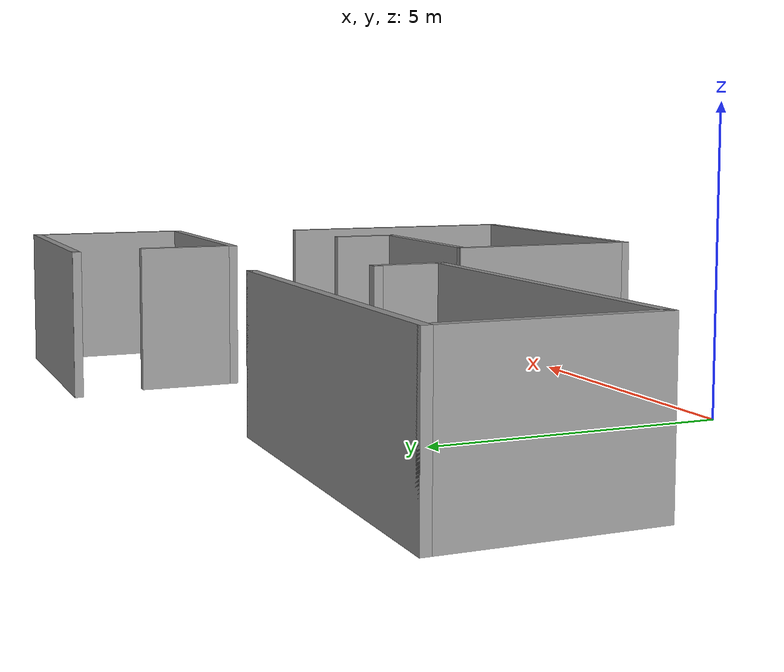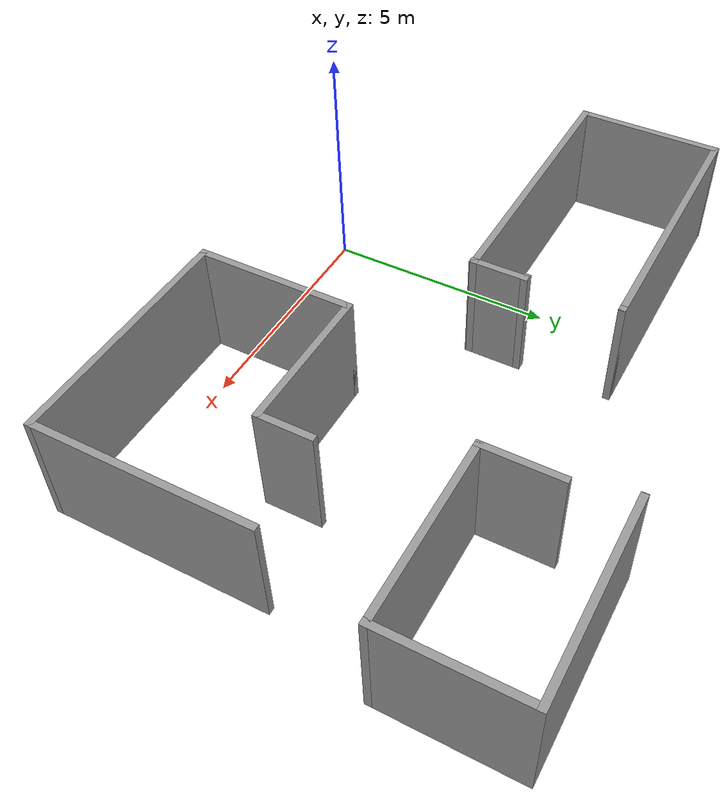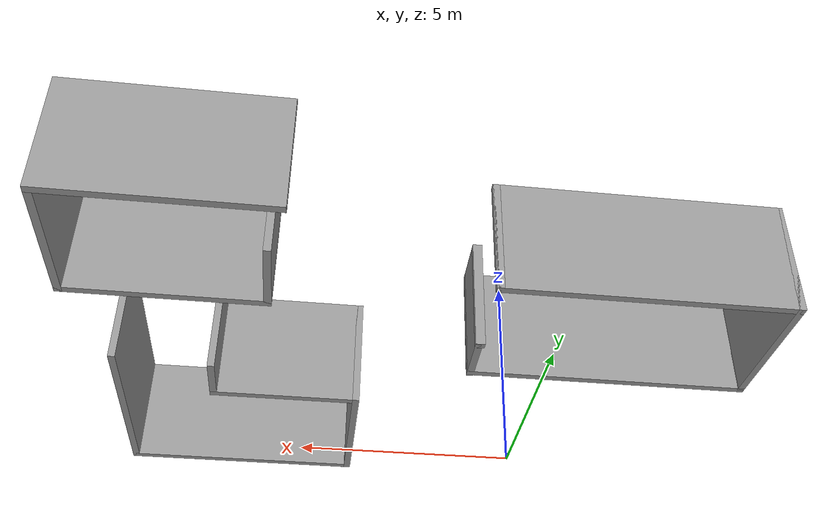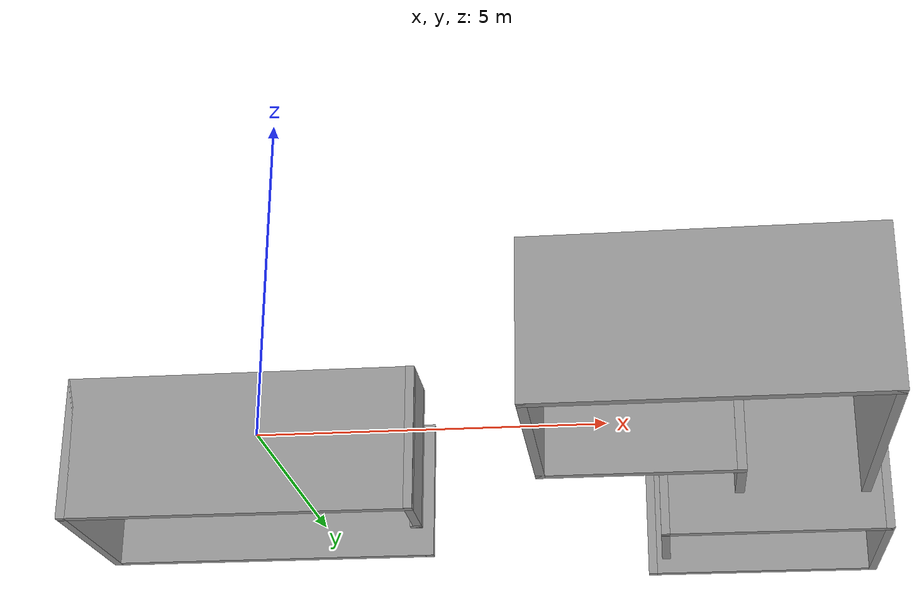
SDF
<?xml version='1.0'?>
<sdf version='1.7'>
  <model name='turtlebot3_autonomous'>
    <pose>2.63212 4.06023 0 0 -0 0</pose>
    <link name='Wall_11'>
      <collision name='Wall_11_Collision'>
        <geometry>
          <box>
            <size>6 0.15 2.5</size>
          </box>
        </geometry>
        <pose>0 0 1.25 0 -0 0</pose>
      </collision>
      <visual name='Wall_11_Visual'>
        <pose>0 0 1.25 0 -0 0</pose>
        <geometry>
          <box>
            <size>6 0.15 2.5</size>
          </box>
        </geometry>
        <material>
          <script>
            <uri>file://media/materials/scripts/gazebo.material</uri>
            <name>Gazebo/Grey</name>
          </script>
          <ambient>1 1 1 1</ambient>
        </material>
        <meta>
          <layer>0</layer>
        </meta>
      </visual>
      <pose>-4.06788 3.08475 0 0 -0 0</pose>
    </link>
    <link name='Wall_12'>
      <collision name='Wall_12_Collision'>
        <geometry>
          <box>
            <size>0.15 0.15 2.5</size>
          </box>
        </geometry>
        <pose>0 0 1.25 0 -0 0</pose>
      </collision>
      <visual name='Wall_12_Visual'>
        <pose>0 0 1.25 0 -0 0</pose>
        <geometry>
          <box>
            <size>0.15 0.15 2.5</size>
          </box>
        </geometry>
        <material>
          <script>
            <uri>file://media/materials/scripts/gazebo.material</uri>
            <name>Gazebo/Grey</name>
          </script>
          <ambient>1 1 1 1</ambient>
        </material>
        <meta>
          <layer>0</layer>
        </meta>
      </visual>
      <pose>-1.14288 3.08475 0 0 -0 0</pose>
    </link>
    <link name='Wall_14'>
      <collision name='Wall_14_Collision'>
        <geometry>
          <box>
            <size>0.16 0.15 2.5</size>
          </box>
        </geometry>
        <pose>0 0 1.25 0 -0 0</pose>
      </collision>
      <visual name='Wall_14_Visual'>
        <pose>0 0 1.25 0 -0 0</pose>
        <geometry>
          <box>
            <size>0.16 0.15 2.5</size>
          </box>
        </geometry>
        <material>
          <script>
            <uri>file://media/materials/scripts/gazebo.material</uri>
            <name>Gazebo/Grey</name>
          </script>
          <ambient>1 1 1 1</ambient>
        </material>
        <meta>
          <layer>0</layer>
        </meta>
      </visual>
      <pose>2.88788 4.93519 0 0 -0 0</pose>
    </link>
    <link name='Wall_15'>
      <collision name='Wall_15_Collision'>
        <geometry>
          <box>
            <size>4.25 0.15 2.5</size>
          </box>
        </geometry>
        <pose>0 0 1.25 0 -0 0</pose>
      </collision>
      <visual name='Wall_15_Visual'>
        <pose>0 0 1.25 0 -0 0</pose>
        <geometry>
          <box>
            <size>4.25 0.15 2.5</size>
          </box>
        </geometry>
        <material>
          <script>
            <uri>file://media/materials/scripts/gazebo.material</uri>
            <name>Gazebo/Grey</name>
          </script>
          <ambient>1 1 1 1</ambient>
        </material>
        <meta>
          <layer>0</layer>
        </meta>
      </visual>
      <pose>4.94288 4.9352 0 0 -0 0</pose>
    </link>
    <link name='Wall_16'>
      <collision name='Wall_16_Collision'>
        <geometry>
          <box>
            <size>3 0.15 2.5</size>
          </box>
        </geometry>
        <pose>0 0 1.25 0 -0 0</pose>
      </collision>
      <visual name='Wall_16_Visual'>
        <pose>0 0 1.25 0 -0 0</pose>
        <geometry>
          <box>
            <size>3 0.15 2.5</size>
          </box>
        </geometry>
        <material>
          <script>
            <uri>file://media/materials/scripts/gazebo.material</uri>
            <name>Gazebo/Grey</name>
          </script>
          <ambient>1 1 1 1</ambient>
        </material>
        <meta>
          <layer>0</layer>
        </meta>
      </visual>
      <pose>6.99288 3.51019 0 0 -0 -1.5708</pose>
    </link>
    <link name='Wall_17'>
      <collision name='Wall_17_Collision'>
        <geometry>
          <box>
            <size>4 0.15 2.5</size>
          </box>
        </geometry>
        <pose>0 0 1.25 0 -0 0</pose>
      </collision>
      <visual name='Wall_17_Visual'>
        <pose>0 0 1.25 0 -0 0</pose>
        <geometry>
          <box>
            <size>4 0.15 2.5</size>
          </box>
        </geometry>
        <material>
          <script>
            <uri>file://media/materials/scripts/gazebo.material</uri>
            <name>Gazebo/Grey</name>
          </script>
          <ambient>1 1 1 1</ambient>
        </material>
        <meta>
          <layer>0</layer>
        </meta>
      </visual>
      <pose>5.06788 2.0852 0 0 -0 3.14159</pose>
    </link>
    <link name='Wall_18'>
      <collision name='Wall_18_Collision'>
        <geometry>
          <box>
            <size>1.75 0.15 2.5</size>
          </box>
        </geometry>
        <pose>0 0 1.25 0 -0 0</pose>
      </collision>
      <visual name='Wall_18_Visual'>
        <pose>0 0 1.25 0 -0 0</pose>
        <geometry>
          <box>
            <size>1.75 0.15 2.5</size>
          </box>
        </geometry>
        <material>
          <script>
            <uri>file://media/materials/scripts/gazebo.material</uri>
            <name>Gazebo/Grey</name>
          </script>
          <ambient>1 1 1 1</ambient>
        </material>
        <meta>
          <layer>0</layer>
        </meta>
      </visual>
      <pose>3.14288 2.88519 0 0 -0 1.5708</pose>
    </link>
    <link name='Wall_20'>
      <collision name='Wall_20_Collision'>
        <geometry>
          <box>
            <size>4.75 0.15 2.5</size>
          </box>
        </geometry>
        <pose>0 0 1.25 0 -0 0</pose>
      </collision>
      <visual name='Wall_20_Visual'>
        <pose>0 0 1.25 0 -0 0</pose>
        <geometry>
          <box>
            <size>4.75 0.15 2.5</size>
          </box>
        </geometry>
        <material>
          <script>
            <uri>file://media/materials/scripts/gazebo.material</uri>
            <name>Gazebo/Grey</name>
          </script>
          <ambient>1 1 1 1</ambient>
        </material>
        <meta>
          <layer>0</layer>
        </meta>
      </visual>
      <pose>6.33629 -2.63519 0 0 -0 -1.5708</pose>
    </link>
    <link name='Wall_21'>
      <collision name='Wall_21_Collision'>
        <geometry>
          <box>
            <size>5.25 0.15 2.5</size>
          </box>
        </geometry>
        <pose>0 0 1.25 0 -0 0</pose>
      </collision>
      <visual name='Wall_21_Visual'>
        <pose>0 0 1.25 0 -0 0</pose>
        <geometry>
          <box>
            <size>5.25 0.15 2.5</size>
          </box>
        </geometry>
        <material>
          <script>
            <uri>file://media/materials/scripts/gazebo.material</uri>
            <name>Gazebo/Grey</name>
          </script>
          <ambient>1 1 1 1</ambient>
        </material>
        <meta>
          <layer>0</layer>
        </meta>
      </visual>
      <pose>3.78629 -4.9352 0 0 -0 3.14159</pose>
    </link>
    <link name='Wall_22'>
      <collision name='Wall_22_Collision'>
        <geometry>
          <box>
            <size>3.5 0.15 2.5</size>
          </box>
        </geometry>
        <pose>0 0 1.25 0 -0 0</pose>
      </collision>
      <visual name='Wall_22_Visual'>
        <pose>0 0 1.25 0 -0 0</pose>
        <geometry>
          <box>
            <size>3.5 0.15 2.5</size>
          </box>
        </geometry>
        <material>
          <script>
            <uri>file://media/materials/scripts/gazebo.material</uri>
            <name>Gazebo/Grey</name>
          </script>
          <ambient>1 1 1 1</ambient>
        </material>
        <meta>
          <layer>0</layer>
        </meta>
      </visual>
      <pose>1.23629 -3.26019 0 0 -0 1.5708</pose>
    </link>
    <link name='Wall_23'>
      <collision name='Wall_23_Collision'>
        <geometry>
          <box>
            <size>3.25 0.15 2.5</size>
          </box>
        </geometry>
        <pose>0 0 1.25 0 -0 0</pose>
      </collision>
      <visual name='Wall_23_Visual'>
        <pose>0 0 1.25 0 -0 0</pose>
        <geometry>
          <box>
            <size>3.25 0.15 2.5</size>
          </box>
        </geometry>
        <material>
          <script>
            <uri>file://media/materials/scripts/gazebo.material</uri>
            <name>Gazebo/Grey</name>
          </script>
          <ambient>1 1 1 1</ambient>
        </material>
        <meta>
          <layer>0</layer>
        </meta>
      </visual>
      <pose>2.78629 -1.58519 0 0 -0 0</pose>
    </link>
    <link name='Wall_24'>
      <collision name='Wall_24_Collision'>
        <geometry>
          <box>
            <size>1.25 0.15 2.5</size>
          </box>
        </geometry>
        <pose>0 0 1.25 0 -0 0</pose>
      </collision>
      <visual name='Wall_24_Visual'>
        <pose>0 0 1.25 0 -0 0</pose>
        <geometry>
          <box>
            <size>1.25 0.15 2.5</size>
          </box>
        </geometry>
        <material>
          <script>
            <uri>file://media/materials/scripts/gazebo.material</uri>
            <name>Gazebo/Grey</name>
          </script>
          <ambient>1 1 1 1</ambient>
        </material>
        <meta>
          <layer>0</layer>
        </meta>
      </visual>
      <pose>4.33629 -1.0352 0 0 -0 1.5708</pose>
    </link>
    <link name='Wall_5'>
      <collision name='Wall_5_Collision'>
        <geometry>
          <box>
            <size>3.25 0.15 2.5</size>
          </box>
        </geometry>
        <pose>0 0 1.25 0 -0 0</pose>
      </collision>
      <visual name='Wall_5_Visual'>
        <pose>0 0 1.25 0 -0 0</pose>
        <geometry>
          <box>
            <size>3.25 0.15 2.5</size>
          </box>
        </geometry>
        <material>
          <script>
            <uri>file://media/materials/scripts/gazebo.material</uri>
            <name>Gazebo/Grey</name>
          </script>
          <ambient>1 1 1 1</ambient>
        </material>
        <meta>
          <layer>0</layer>
        </meta>
      </visual>
      <pose>-6.99288 1.53475 0 0 -0 -1.5708</pose>
    </link>
    <link name='Wall_6'>
      <collision name='Wall_6_Collision'>
        <geometry>
          <box>
            <size>0.16 0.15 2.5</size>
          </box>
        </geometry>
        <pose>0 0 1.25 0 -0 0</pose>
      </collision>
      <visual name='Wall_6_Visual'>
        <pose>0 0 1.25 0 -0 0</pose>
        <geometry>
          <box>
            <size>0.16 0.15 2.5</size>
          </box>
        </geometry>
        <material>
          <script>
            <uri>file://media/materials/scripts/gazebo.material</uri>
            <name>Gazebo/Grey</name>
          </script>
          <ambient>1 1 1 1</ambient>
        </material>
        <meta>
          <layer>0</layer>
        </meta>
      </visual>
      <pose>-6.98788 -0.015254 0 0 -0 0</pose>
    </link>
    <link name='Wall_7'>
      <collision name='Wall_7_Collision'>
        <geometry>
          <box>
            <size>6.06037 0.15 2.5</size>
          </box>
        </geometry>
        <pose>0 0 1.25 0 -0 0</pose>
      </collision>
      <visual name='Wall_7_Visual'>
        <pose>0 0 1.25 0 -0 0</pose>
        <geometry>
          <box>
            <size>6.06037 0.15 2.5</size>
          </box>
        </geometry>
        <material>
          <script>
            <uri>file://media/materials/scripts/gazebo.material</uri>
            <name>Gazebo/Grey</name>
          </script>
          <ambient>1 1 1 1</ambient>
        </material>
        <meta>
          <layer>0</layer>
        </meta>
      </visual>
      <pose>-4.02771 -0.015254 0 0 -0 0</pose>
    </link>
    <link name='Wall_8'>
      <collision name='Wall_8_Collision'>
        <geometry>
          <box>
            <size>1.25 0.15 2.5</size>
          </box>
        </geometry>
        <pose>0 0 1.25 0 -0 0</pose>
      </collision>
      <visual name='Wall_8_Visual'>
        <pose>0 0 1.25 0 -0 0</pose>
        <geometry>
          <box>
            <size>1.25 0.15 2.5</size>
          </box>
        </geometry>
        <material>
          <script>
            <uri>file://media/materials/scripts/gazebo.material</uri>
            <name>Gazebo/Grey</name>
          </script>
          <ambient>1 1 1 1</ambient>
        </material>
        <meta>
          <layer>0</layer>
        </meta>
      </visual>
      <pose>-1.07254 0.514633 0 0 -0 1.5708</pose>
    </link>
    <link name='Wall_9'>
      <collision name='Wall_9_Collision'>
        <geometry>
          <box>
            <size>0.200341 0.15 2.5</size>
          </box>
        </geometry>
        <pose>0 0 1.25 0 -0 0</pose>
      </collision>
      <visual name='Wall_9_Visual'>
        <pose>0 0 1.25 0 -0 0</pose>
        <geometry>
          <box>
            <size>0.200341 0.15 2.5</size>
          </box>
        </geometry>
        <material>
          <script>
            <uri>file://media/materials/scripts/gazebo.material</uri>
            <name>Gazebo/Grey</name>
          </script>
          <ambient>1 1 1 1</ambient>
        </material>
        <meta>
          <layer>0</layer>
        </meta>
      </visual>
      <pose>-1.09771 1.08475 0 0 -0 -3.14159</pose>
    </link>
    <static>1</static>
  </model>
</sdf>
